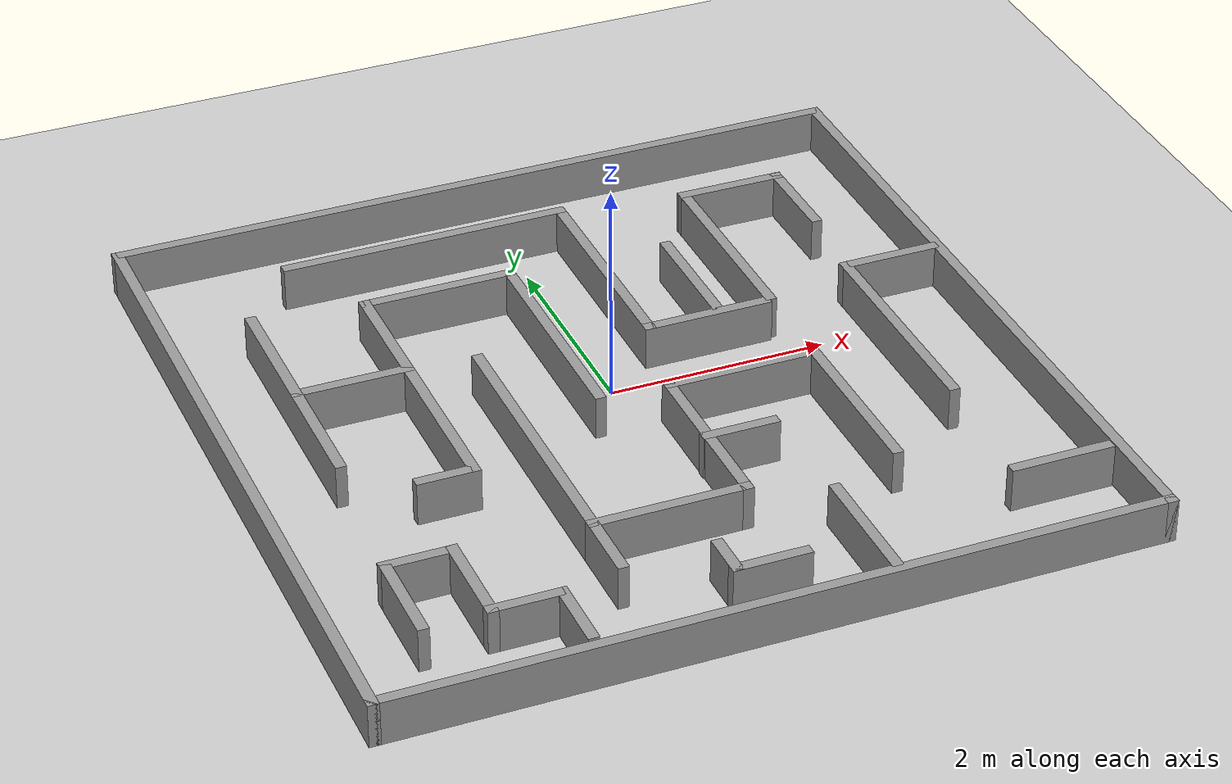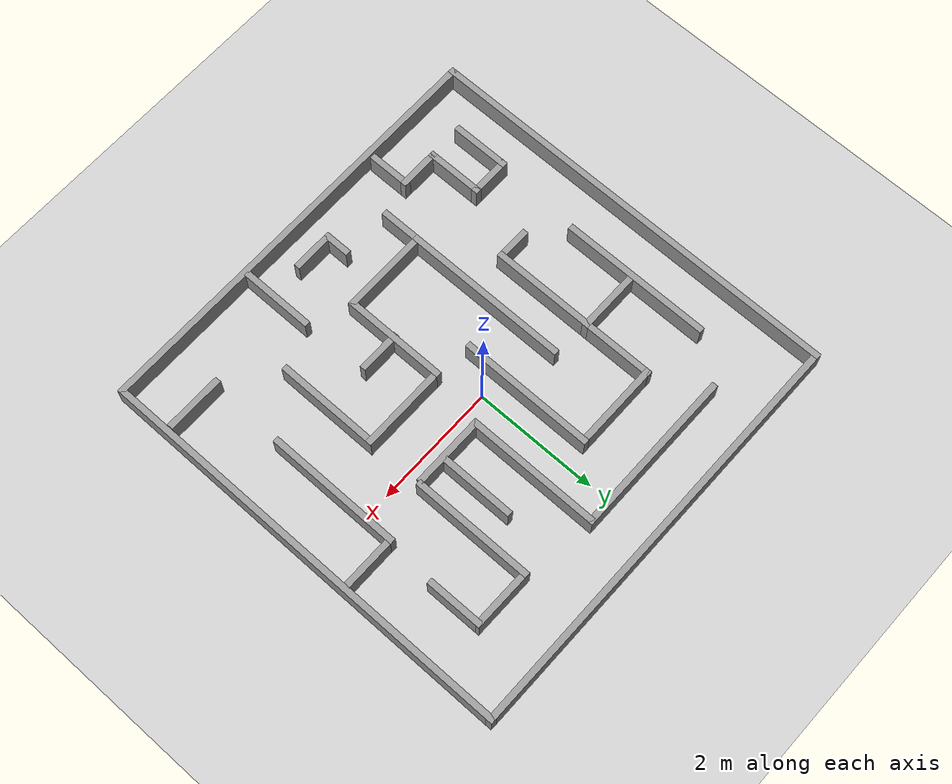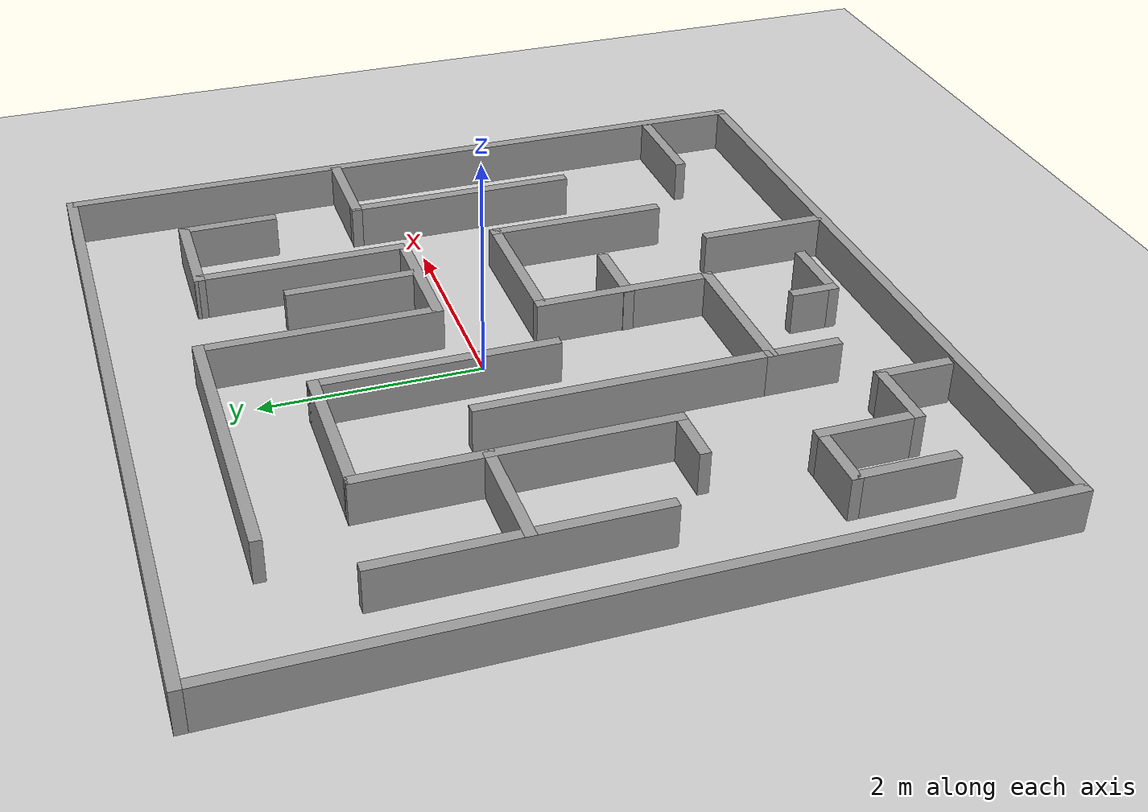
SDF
<sdf version="1.7">
 <world name="default">
  <light name="sun" type="directional">
   <pose>0 0 10 0 -0 0</pose>
   <diffuse>0.8 0.8 0.8 1</diffuse>
   <specular>0.2 0.2 0.2 1</specular>
   <attenuation>
    <range>1000</range>
    <constant>0.9</constant>
    <linear>0.01</linear>
    <quadratic>0.001</quadratic>
   </attenuation>
   <direction>-0.5 0.1 -0.9</direction>
   <spot><inner_angle>0</inner_angle><outer_angle>0</outer_angle><falloff>0</falloff></spot>
  </light>
  <model name="ground_plane">
   <static>1</static>
   <link name="link">
    <collision name="collision">
     <geometry><plane><normal>0 0 1</normal><size>100 100</size></plane></geometry>
     <surface>
      <contact><collide_bitmask>65535</collide_bitmask></contact>
      <friction><ode><mu>100</mu><mu2>50</mu2></ode></friction>
     </surface>
    </collision>
    <visual name="visual">
     <cast_shadows>0</cast_shadows>
     <geometry><plane><normal>0 0 1</normal><size>100 100</size></plane></geometry>
     <material>
      <script><uri>file://media/materials/scripts/gazebo.material</uri><name>Gazebo/Grey</name></script>
     </material>
    </visual>
   </link>
  </model>
  <gravity>0 0 -9.8</gravity>
  <magnetic_field>6e-06 2.3e-05 -4.2e-05</magnetic_field>
  <atmosphere type="adiabatic"/>
  <physics type="ode">
   <max_step_size>0.001</max_step_size>
   <real_time_factor>1</real_time_factor>
   <real_time_update_rate>1000</real_time_update_rate>
  </physics>
  <scene><ambient>0.4 0.4 0.4 1</ambient><background>0.7 0.7 0.7 1</background><shadows>1</shadows></scene>
  <spherical_coordinates>
   <surface_model>EARTH_WGS84</surface_model>
   <latitude_deg>0</latitude_deg>
   <longitude_deg>0</longitude_deg>
   <elevation>0</elevation>
   <heading_deg>0</heading_deg>
  </spherical_coordinates>
  <model name="map.world">
   <pose>-0.040006 -0.261786 0 0 -0 0</pose>
   <link name="Wall_10">
    <collision name="Wall_10_Collision">
     <geometry><box><size>6.95 0.1 0.4</size></box></geometry>
     <pose>0 0 0.2 0 -0 0</pose>
    </collision>
    <visual name="Wall_10_Visual">
     <pose>0 0 0.2 0 -0 0</pose>
     <geometry><box><size>6.95 0.1 0.4</size></box></geometry>
     <material>
      <script><uri>file://media/materials/scripts/gazebo.material</uri><name>Gazebo/Grey</name></script>
      <ambient>1 1 1 1</ambient>
     </material>
     <meta><layer>0</layer></meta>
    </visual>
    <pose>-0 3.425 0 0 -0 3.14159</pose>
   </link>
   <link name="Wall_30">
    <collision name="Wall_30_Collision">
     <geometry><box><size>1.10193 0.1 0.4</size></box></geometry>
     <pose>0 0 0.2 0 -0 0</pose>
    </collision>
    <visual name="Wall_30_Visual">
     <pose>0 0 0.2 0 -0 0</pose>
     <geometry><box><size>1.10193 0.1 0.4</size></box></geometry>
     <material>
      <script><uri>file://media/materials/scripts/gazebo.material</uri><name>Gazebo/Grey</name></script>
      <ambient>1 1 1 1</ambient>
     </material>
     <meta><layer>0</layer></meta>
    </visual>
    <pose>-2.14589 0.727 0 0 -0 0</pose>
   </link>
   <link name="Wall_31">
    <collision name="Wall_31_Collision">
     <geometry><box><size>1.69955 0.1 0.4</size></box></geometry>
     <pose>0 0 0.2 0 -0 0</pose>
    </collision>
    <visual name="Wall_31_Visual">
     <pose>0 0 0.2 0 -0 0</pose>
     <geometry><box><size>1.69955 0.1 0.4</size></box></geometry>
     <material>
      <script><uri>file://media/materials/scripts/gazebo.material</uri><name>Gazebo/Grey</name></script>
      <ambient>1 1 1 1</ambient>
     </material>
     <meta><layer>0</layer></meta>
    </visual>
    <pose>-1.645 -0.073 0 0 -0 -1.5708</pose>
   </link>
   <link name="Wall_32">
    <collision name="Wall_32_Collision">
     <geometry><box><size>0.566986 0.1 0.4</size></box></geometry>
     <pose>0 0 0.2 0 -0 0</pose>
    </collision>
    <visual name="Wall_32_Visual">
     <pose>0 0 0.2 0 -0 0</pose>
     <geometry><box><size>0.566986 0.1 0.4</size></box></geometry>
     <material>
      <script><uri>file://media/materials/scripts/gazebo.material</uri><name>Gazebo/Grey</name></script>
      <ambient>1 1 1 1</ambient>
     </material>
     <meta><layer>0</layer></meta>
    </visual>
    <pose>-1.8785 -0.873 0 0 -0 3.14159</pose>
   </link>
   <link name="Wall_34">
    <collision name="Wall_34_Collision">
     <geometry><box><size>1.2 0.1 0.4</size></box></geometry>
     <pose>0 0 0.2 0 -0 0</pose>
    </collision>
    <visual name="Wall_34_Visual">
     <pose>0 0 0.2 0 -0 0</pose>
     <geometry><box><size>1.2 0.1 0.4</size></box></geometry>
     <material>
      <script><uri>file://media/materials/scripts/gazebo.material</uri><name>Gazebo/Grey</name></script>
      <ambient>1 1 1 1</ambient>
     </material>
     <meta><layer>0</layer></meta>
    </visual>
    <pose>-1.645 1.277 0 0 -0 1.5708</pose>
   </link>
   <link name="Wall_35">
    <collision name="Wall_35_Collision">
     <geometry><box><size>1.45 0.1 0.4</size></box></geometry>
     <pose>0 0 0.2 0 -0 0</pose>
    </collision>
    <visual name="Wall_35_Visual">
     <pose>0 0 0.2 0 -0 0</pose>
     <geometry><box><size>1.45 0.1 0.4</size></box></geometry>
     <material>
      <script><uri>file://media/materials/scripts/gazebo.material</uri><name>Gazebo/Grey</name></script>
      <ambient>1 1 1 1</ambient>
     </material>
     <meta><layer>0</layer></meta>
    </visual>
    <pose>-0.97 1.827 0 0 -0 0</pose>
   </link>
   <link name="Wall_36">
    <collision name="Wall_36_Collision">
     <geometry><box><size>2.2 0.1 0.4</size></box></geometry>
     <pose>0 0 0.2 0 -0 0</pose>
    </collision>
    <visual name="Wall_36_Visual">
     <pose>0 0 0.2 0 -0 0</pose>
     <geometry><box><size>2.2 0.1 0.4</size></box></geometry>
     <material>
      <script><uri>file://media/materials/scripts/gazebo.material</uri><name>Gazebo/Grey</name></script>
      <ambient>1 1 1 1</ambient>
     </material>
     <meta><layer>0</layer></meta>
    </visual>
    <pose>-0.295 0.777 0 0 -0 -1.5708</pose>
   </link>
   <link name="Wall_39">
    <collision name="Wall_39_Collision">
     <geometry><box><size>2.69975 0.1 0.4</size></box></geometry>
     <pose>0 0 0.2 0 -0 0</pose>
    </collision>
    <visual name="Wall_39_Visual">
     <pose>0 0 0.2 0 -0 0</pose>
     <geometry><box><size>2.69975 0.1 0.4</size></box></geometry>
     <material>
      <script><uri>file://media/materials/scripts/gazebo.material</uri><name>Gazebo/Grey</name></script>
      <ambient>1 1 1 1</ambient>
     </material>
     <meta><layer>0</layer></meta>
    </visual>
    <pose>-0.79 2.649 0 0 -0 0</pose>
   </link>
   <link name="Wall_40">
    <collision name="Wall_40_Collision">
     <geometry><box><size>2.19981 0.1 0.4</size></box></geometry>
     <pose>0 0 0.2 0 -0 0</pose>
    </collision>
    <visual name="Wall_40_Visual">
     <pose>0 0 0.2 0 -0 0</pose>
     <geometry><box><size>2.19981 0.1 0.4</size></box></geometry>
     <material>
      <script><uri>file://media/materials/scripts/gazebo.material</uri><name>Gazebo/Grey</name></script>
      <ambient>1 1 1 1</ambient>
     </material>
     <meta><layer>0</layer></meta>
    </visual>
    <pose>0.51 1.599 0 0 -0 -1.5708</pose>
   </link>
   <link name="Wall_41">
    <collision name="Wall_41_Collision">
     <geometry><box><size>1.19975 0.1 0.4</size></box></geometry>
     <pose>0 0 0.2 0 -0 0</pose>
    </collision>
    <visual name="Wall_41_Visual">
     <pose>0 0 0.2 0 -0 0</pose>
     <geometry><box><size>1.19975 0.1 0.4</size></box></geometry>
     <material>
      <script><uri>file://media/materials/scripts/gazebo.material</uri><name>Gazebo/Grey</name></script>
      <ambient>1 1 1 1</ambient>
     </material>
     <meta><layer>0</layer></meta>
    </visual>
    <pose>1.06 0.549 0 0 -0 0</pose>
   </link>
   <link name="Wall_43">
    <collision name="Wall_43_Collision">
     <geometry><box><size>0.7 0.1 0.4</size></box></geometry>
     <pose>0 0 0.2 0 -0 0</pose>
    </collision>
    <visual name="Wall_43_Visual">
     <pose>0 0 0.2 0 -0 0</pose>
     <geometry><box><size>0.7 0.1 0.4</size></box></geometry>
     <material>
      <script><uri>file://media/materials/scripts/gazebo.material</uri><name>Gazebo/Grey</name></script>
      <ambient>1 1 1 1</ambient>
     </material>
     <meta><layer>0</layer></meta>
    </visual>
    <pose>-1.586 -2.999 0 0 -0 1.5708</pose>
   </link>
   <link name="Wall_44">
    <collision name="Wall_44_Collision">
     <geometry><box><size>0.7 0.1 0.4</size></box></geometry>
     <pose>0 0 0.2 0 -0 0</pose>
    </collision>
    <visual name="Wall_44_Visual">
     <pose>0 0 0.2 0 -0 0</pose>
     <geometry><box><size>0.7 0.1 0.4</size></box></geometry>
     <material>
      <script><uri>file://media/materials/scripts/gazebo.material</uri><name>Gazebo/Grey</name></script>
      <ambient>1 1 1 1</ambient>
     </material>
     <meta><layer>0</layer></meta>
    </visual>
    <pose>-1.886 -2.699 0 0 -0 3.14159</pose>
   </link>
   <link name="Wall_45">
    <collision name="Wall_45_Collision">
     <geometry><box><size>0.95 0.1 0.4</size></box></geometry>
     <pose>0 0 0.2 0 -0 0</pose>
    </collision>
    <visual name="Wall_45_Visual">
     <pose>0 0 0.2 0 -0 0</pose>
     <geometry><box><size>0.95 0.1 0.4</size></box></geometry>
     <material>
      <script><uri>file://media/materials/scripts/gazebo.material</uri><name>Gazebo/Grey</name></script>
      <ambient>1 1 1 1</ambient>
     </material>
     <meta><layer>0</layer></meta>
    </visual>
    <pose>-2.186 -2.274 0 0 -0 1.5708</pose>
   </link>
   <link name="Wall_46">
    <collision name="Wall_46_Collision">
     <geometry><box><size>0.676 0.1 0.4</size></box></geometry>
     <pose>0 0 0.2 0 -0 0</pose>
    </collision>
    <visual name="Wall_46_Visual">
     <pose>0 0 0.2 0 -0 0</pose>
     <geometry><box><size>0.676 0.1 0.4</size></box></geometry>
     <material>
      <script><uri>file://media/materials/scripts/gazebo.material</uri><name>Gazebo/Grey</name></script>
      <ambient>1 1 1 1</ambient>
     </material>
     <meta><layer>0</layer></meta>
    </visual>
    <pose>-2.474 -1.849 0 0 -0 3.14159</pose>
   </link>
   <link name="Wall_47">
    <collision name="Wall_47_Collision">
     <geometry><box><size>0.949636 0.1 0.4</size></box></geometry>
     <pose>0 0 0.2 0 -0 0</pose>
    </collision>
    <visual name="Wall_47_Visual">
     <pose>0 0 0.2 0 -0 0</pose>
     <geometry><box><size>0.949636 0.1 0.4</size></box></geometry>
     <material>
      <script><uri>file://media/materials/scripts/gazebo.material</uri><name>Gazebo/Grey</name></script>
      <ambient>1 1 1 1</ambient>
     </material>
     <meta><layer>0</layer></meta>
    </visual>
    <pose>-2.762 -2.274 0 0 -0 -1.5708</pose>
   </link>
   <link name="Wall_49">
    <collision name="Wall_49_Collision">
     <geometry><box><size>0.7 0.1 0.4</size></box></geometry>
     <pose>0 0 0.2 0 -0 0</pose>
    </collision>
    <visual name="Wall_49_Visual">
     <pose>0 0 0.2 0 -0 0</pose>
     <geometry><box><size>0.7 0.1 0.4</size></box></geometry>
     <material>
      <script><uri>file://media/materials/scripts/gazebo.material</uri><name>Gazebo/Grey</name></script>
      <ambient>1 1 1 1</ambient>
     </material>
     <meta><layer>0</layer></meta>
    </visual>
    <pose>-1.029 -2.251 0 0 -0 1.5708</pose>
   </link>
   <link name="Wall_50">
    <collision name="Wall_50_Collision">
     <geometry><box><size>2.70019 0.1 0.4</size></box></geometry>
     <pose>0 0 0.2 0 -0 0</pose>
    </collision>
    <visual name="Wall_50_Visual">
     <pose>0 0 0.2 0 -0 0</pose>
     <geometry><box><size>2.70019 0.1 0.4</size></box></geometry>
     <material>
      <script><uri>file://media/materials/scripts/gazebo.material</uri><name>Gazebo/Grey</name></script>
      <ambient>1 1 1 1</ambient>
     </material>
     <meta><layer>0</layer></meta>
    </visual>
    <pose>-1.029 -0.651 0 0 -0 1.5708</pose>
   </link>
   <link name="Wall_52">
    <collision name="Wall_52_Collision">
     <geometry><box><size>1.44962 0.1 0.4</size></box></geometry>
     <pose>0 0 0.2 0 -0 0</pose>
    </collision>
    <visual name="Wall_52_Visual">
     <pose>0 0 0.2 0 -0 0</pose>
     <geometry><box><size>1.44962 0.1 0.4</size></box></geometry>
     <material>
      <script><uri>file://media/materials/scripts/gazebo.material</uri><name>Gazebo/Grey</name></script>
      <ambient>1 1 1 1</ambient>
     </material>
     <meta><layer>0</layer></meta>
    </visual>
    <pose>-0.354 -1.951 0 0 -0 0</pose>
   </link>
   <link name="Wall_53">
    <collision name="Wall_53_Collision">
     <geometry><box><size>1.70019 0.1 0.4</size></box></geometry>
     <pose>0 0 0.2 0 -0 0</pose>
    </collision>
    <visual name="Wall_53_Visual">
     <pose>0 0 0.2 0 -0 0</pose>
     <geometry><box><size>1.70019 0.1 0.4</size></box></geometry>
     <material>
      <script><uri>file://media/materials/scripts/gazebo.material</uri><name>Gazebo/Grey</name></script>
      <ambient>1 1 1 1</ambient>
     </material>
     <meta><layer>0</layer></meta>
    </visual>
    <pose>0.321 -1.151 0 0 -0 1.5708</pose>
   </link>
   <link name="Wall_54">
    <collision name="Wall_54_Collision">
     <geometry><box><size>1.44962 0.1 0.4</size></box></geometry>
     <pose>0 0 0.2 0 -0 0</pose>
    </collision>
    <visual name="Wall_54_Visual">
     <pose>0 0 0.2 0 -0 0</pose>
     <geometry><box><size>1.44962 0.1 0.4</size></box></geometry>
     <material>
      <script><uri>file://media/materials/scripts/gazebo.material</uri><name>Gazebo/Grey</name></script>
      <ambient>1 1 1 1</ambient>
     </material>
     <meta><layer>0</layer></meta>
    </visual>
    <pose>0.996 -0.351 0 0 -0 0</pose>
   </link>
   <link name="Wall_55">
    <collision name="Wall_55_Collision">
     <geometry><box><size>1.69981 0.1 0.4</size></box></geometry>
     <pose>0 0 0.2 0 -0 0</pose>
    </collision>
    <visual name="Wall_55_Visual">
     <pose>0 0 0.2 0 -0 0</pose>
     <geometry><box><size>1.69981 0.1 0.4</size></box></geometry>
     <material>
      <script><uri>file://media/materials/scripts/gazebo.material</uri><name>Gazebo/Grey</name></script>
      <ambient>1 1 1 1</ambient>
     </material>
     <meta><layer>0</layer></meta>
    </visual>
    <pose>1.671 -1.151 0 0 -0 -1.5708</pose>
   </link>
   <link name="Wall_57">
    <collision name="Wall_57_Collision">
     <geometry><box><size>0.924812 0.1 0.4</size></box></geometry>
     <pose>0 0 0.2 0 -0 0</pose>
    </collision>
    <visual name="Wall_57_Visual">
     <pose>0 0 0.2 0 -0 0</pose>
     <geometry><box><size>0.924812 0.1 0.4</size></box></geometry>
     <material>
      <script><uri>file://media/materials/scripts/gazebo.material</uri><name>Gazebo/Grey</name></script>
      <ambient>1 1 1 1</ambient>
     </material>
     <meta><layer>0</layer></meta>
    </visual>
    <pose>2.5916 2.0424 0 0 -0 1.5771</pose>
   </link>
   <link name="Wall_59">
    <collision name="Wall_59_Collision">
     <geometry><box><size>1.02251 0.1 0.4</size></box></geometry>
     <pose>0 0 0.2 0 -0 0</pose>
    </collision>
    <visual name="Wall_59_Visual">
     <pose>0 0 0.2 0 -0 0</pose>
     <geometry><box><size>1.02251 0.1 0.4</size></box></geometry>
     <material>
      <script><uri>file://media/materials/scripts/gazebo.material</uri><name>Gazebo/Grey</name></script>
      <ambient>1 1 1 1</ambient>
     </material>
     <meta><layer>0</layer></meta>
    </visual>
    <pose>2.1279 2.4625 0 0 -0 3.134</pose>
   </link>
   <link name="Wall_60">
    <collision name="Wall_60_Collision">
     <geometry><box><size>1.97447 0.1 0.4</size></box></geometry>
     <pose>0 0 0.2 0 -0 0</pose>
    </collision>
    <visual name="Wall_60_Visual">
     <pose>0 0 0.2 0 -0 0</pose>
     <geometry><box><size>1.97447 0.1 0.4</size></box></geometry>
     <material>
      <script><uri>file://media/materials/scripts/gazebo.material</uri><name>Gazebo/Grey</name></script>
      <ambient>1 1 1 1</ambient>
     </material>
     <meta><layer>0</layer></meta>
    </visual>
    <pose>1.66878 1.52456 0 0 -0 -1.56868</pose>
   </link>
   <link name="Wall_62">
    <collision name="Wall_62_Collision">
     <geometry><box><size>0.95 0.1 0.4</size></box></geometry>
     <pose>0 0 0.2 0 -0 0</pose>
    </collision>
    <visual name="Wall_62_Visual">
     <pose>0 0 0.2 0 -0 0</pose>
     <geometry><box><size>0.95 0.1 0.4</size></box></geometry>
     <material>
      <script><uri>file://media/materials/scripts/gazebo.material</uri><name>Gazebo/Grey</name></script>
      <ambient>1 1 1 1</ambient>
     </material>
     <meta><layer>0</layer></meta>
    </visual>
    <pose>2.946 0.806 0 0 -0 3.14159</pose>
   </link>
   <link name="Wall_63">
    <collision name="Wall_63_Collision">
     <geometry><box><size>2.20029 0.1 0.4</size></box></geometry>
     <pose>0 0 0.2 0 -0 0</pose>
    </collision>
    <visual name="Wall_63_Visual">
     <pose>0 0 0.2 0 -0 0</pose>
     <geometry><box><size>2.20029 0.1 0.4</size></box></geometry>
     <material>
      <script><uri>file://media/materials/scripts/gazebo.material</uri><name>Gazebo/Grey</name></script>
      <ambient>1 1 1 1</ambient>
     </material>
     <meta><layer>0</layer></meta>
    </visual>
    <pose>2.521 -0.244 0 0 -0 -1.5708</pose>
   </link>
   <link name="Wall_65">
    <collision name="Wall_65_Collision">
     <geometry><box><size>1.20019 0.1 0.4</size></box></geometry>
     <pose>0 0 0.2 0 -0 0</pose>
    </collision>
    <visual name="Wall_65_Visual">
     <pose>0 0 0.2 0 -0 0</pose>
     <geometry><box><size>1.20019 0.1 0.4</size></box></geometry>
     <material>
      <script><uri>file://media/materials/scripts/gazebo.material</uri><name>Gazebo/Grey</name></script>
      <ambient>1 1 1 1</ambient>
     </material>
     <meta><layer>0</layer></meta>
    </visual>
    <pose>0.988 -2.801 0 0 -0 1.5708</pose>
   </link>
   <link name="Wall_68">
    <collision name="Wall_68_Collision">
     <geometry><box><size>2.45046 0.1 0.4</size></box></geometry>
     <pose>0 0 0.2 0 -0 0</pose>
    </collision>
    <visual name="Wall_68_Visual">
     <pose>0 0 0.2 0 -0 0</pose>
     <geometry><box><size>2.45046 0.1 0.4</size></box></geometry>
     <material>
      <script><uri>file://media/materials/scripts/gazebo.material</uri><name>Gazebo/Grey</name></script>
      <ambient>1 1 1 1</ambient>
     </material>
     <meta><layer>0</layer></meta>
    </visual>
    <pose>-2.647 0.779 0 0 -0 -1.5708</pose>
   </link>
   <link name="Wall_7">
    <collision name="Wall_7_Collision">
     <geometry><box><size>6.95 0.1 0.4</size></box></geometry>
     <pose>0 0 0.2 0 -0 0</pose>
    </collision>
    <visual name="Wall_7_Visual">
     <pose>0 0 0.2 0 -0 0</pose>
     <geometry><box><size>6.95 0.1 0.4</size></box></geometry>
     <material>
      <script><uri>file://media/materials/scripts/gazebo.material</uri><name>Gazebo/Grey</name></script>
      <ambient>1 1 1 1</ambient>
     </material>
     <meta><layer>0</layer></meta>
    </visual>
    <pose>-3.425 0 0 0 -0 -1.5708</pose>
   </link>
   <link name="Wall_70">
    <collision name="Wall_70_Collision">
     <geometry><box><size>0.949551 0.1 0.4</size></box></geometry>
     <pose>0 0 0.2 0 -0 0</pose>
    </collision>
    <visual name="Wall_70_Visual">
     <pose>0 0 0.2 0 -0 0</pose>
     <geometry><box><size>0.949551 0.1 0.4</size></box></geometry>
     <material>
      <script><uri>file://media/materials/scripts/gazebo.material</uri><name>Gazebo/Grey</name></script>
      <ambient>1 1 1 1</ambient>
     </material>
     <meta><layer>0</layer></meta>
    </visual>
    <pose>2.893 -2.551 0 0 -0 3.14159</pose>
   </link>
   <link name="Wall_73">
    <collision name="Wall_73_Collision">
     <geometry><box><size>1.2 0.1 0.4</size></box></geometry>
     <pose>0 0 0.2 0 -0 0</pose>
    </collision>
    <visual name="Wall_73_Visual">
     <pose>0 0 0.2 0 -0 0</pose>
     <geometry><box><size>1.2 0.1 0.4</size></box></geometry>
     <material>
      <script><uri>file://media/materials/scripts/gazebo.material</uri><name>Gazebo/Grey</name></script>
      <ambient>1 1 1 1</ambient>
     </material>
     <meta><layer>0</layer></meta>
    </visual>
    <pose>1.179 1.17648 0 0 -0 1.5708</pose>
   </link>
   <link name="Wall_77">
    <collision name="Wall_77_Collision">
     <geometry><box><size>0.700291 0.1 0.4</size></box></geometry>
     <pose>0 0 0.2 0 -0 0</pose>
    </collision>
    <visual name="Wall_77_Visual">
     <pose>0 0 0.2 0 -0 0</pose>
     <geometry><box><size>0.700291 0.1 0.4</size></box></geometry>
     <material>
      <script><uri>file://media/materials/scripts/gazebo.material</uri><name>Gazebo/Grey</name></script>
      <ambient>1 1 1 1</ambient>
     </material>
     <meta><layer>0</layer></meta>
    </visual>
    <pose>0.097 -2.933 0 0 -0 3.14159</pose>
   </link>
   <link name="Wall_78">
    <collision name="Wall_78_Collision">
     <geometry><box><size>0.449582 0.1 0.4</size></box></geometry>
     <pose>0 0 0.2 0 -0 0</pose>
    </collision>
    <visual name="Wall_78_Visual">
     <pose>0 0 0.2 0 -0 0</pose>
     <geometry><box><size>0.449582 0.1 0.4</size></box></geometry>
     <material>
      <script><uri>file://media/materials/scripts/gazebo.material</uri><name>Gazebo/Grey</name></script>
      <ambient>1 1 1 1</ambient>
     </material>
     <meta><layer>0</layer></meta>
    </visual>
    <pose>-0.203 -2.758 0 0 -0 1.5708</pose>
   </link>
   <link name="Wall_8">
    <collision name="Wall_8_Collision">
     <geometry><box><size>6.95 0.1 0.4</size></box></geometry>
     <pose>0 0 0.2 0 -0 0</pose>
    </collision>
    <visual name="Wall_8_Visual">
     <pose>0 0 0.2 0 -0 0</pose>
     <geometry><box><size>6.95 0.1 0.4</size></box></geometry>
     <material>
      <script><uri>file://media/materials/scripts/gazebo.material</uri><name>Gazebo/Grey</name></script>
      <ambient>1 1 1 1</ambient>
     </material>
     <meta><layer>0</layer></meta>
    </visual>
    <pose>-0 -3.425 0 0 -0 0</pose>
   </link>
   <link name="Wall_84">
    <collision name="Wall_84_Collision">
     <geometry><box><size>0.699626 0.1 0.4</size></box></geometry>
     <pose>0 0 0.2 0 -0 0</pose>
    </collision>
    <visual name="Wall_84_Visual">
     <pose>0 0 0.2 0 -0 0</pose>
     <geometry><box><size>0.699626 0.1 0.4</size></box></geometry>
     <material>
      <script><uri>file://media/materials/scripts/gazebo.material</uri><name>Gazebo/Grey</name></script>
      <ambient>1 1 1 1</ambient>
     </material>
     <meta><layer>0</layer></meta>
    </visual>
    <pose>0.612 -1.166 0 0 -0 0</pose>
   </link>
   <link name="Wall_9">
    <collision name="Wall_9_Collision">
     <geometry><box><size>6.95 0.1 0.4</size></box></geometry>
     <pose>0 0 0.2 0 -0 0</pose>
    </collision>
    <visual name="Wall_9_Visual">
     <pose>0 0 0.2 0 -0 0</pose>
     <geometry><box><size>6.95 0.1 0.4</size></box></geometry>
     <material>
      <script><uri>file://media/materials/scripts/gazebo.material</uri><name>Gazebo/Grey</name></script>
      <ambient>1 1 1 1</ambient>
     </material>
     <meta><layer>0</layer></meta>
    </visual>
    <pose>3.425 0 0 0 -0 1.5708</pose>
   </link>
   <static>1</static>
  </model>
 </world>
</sdf>
